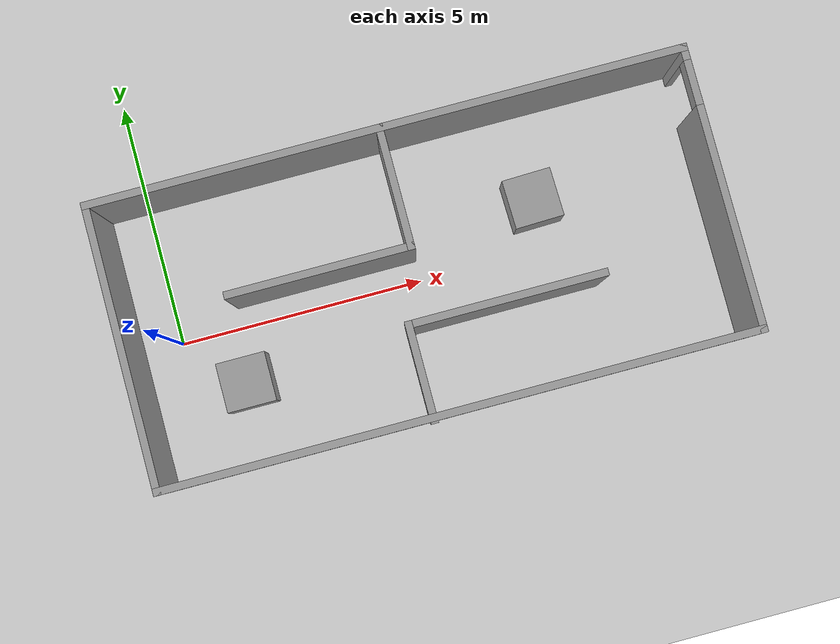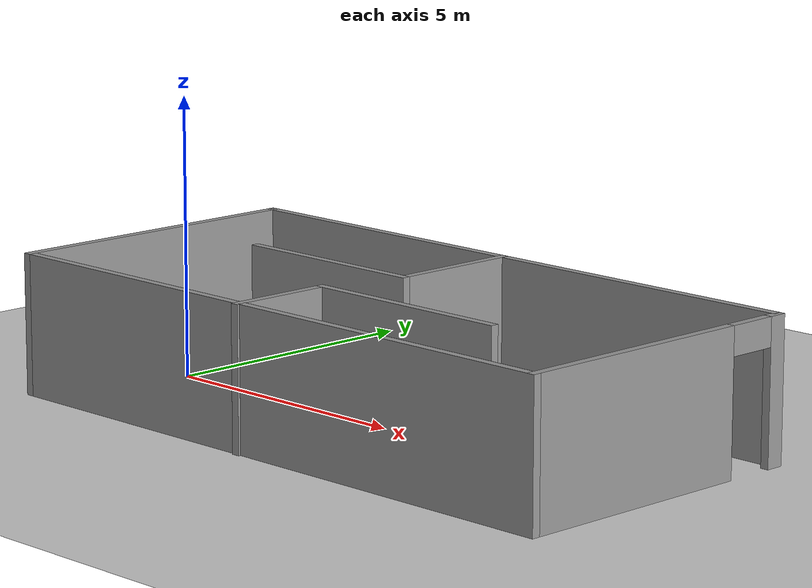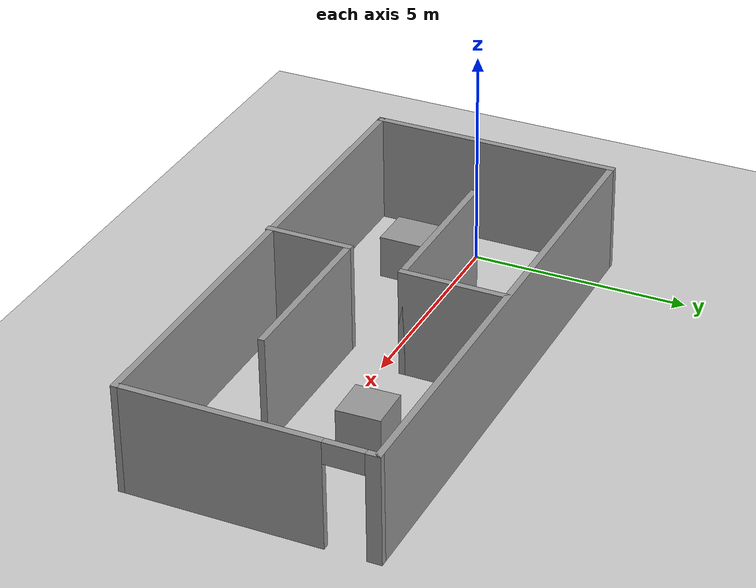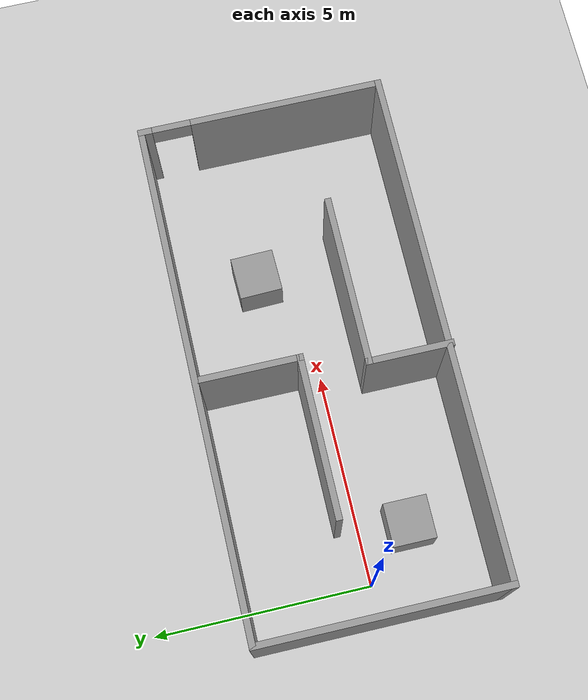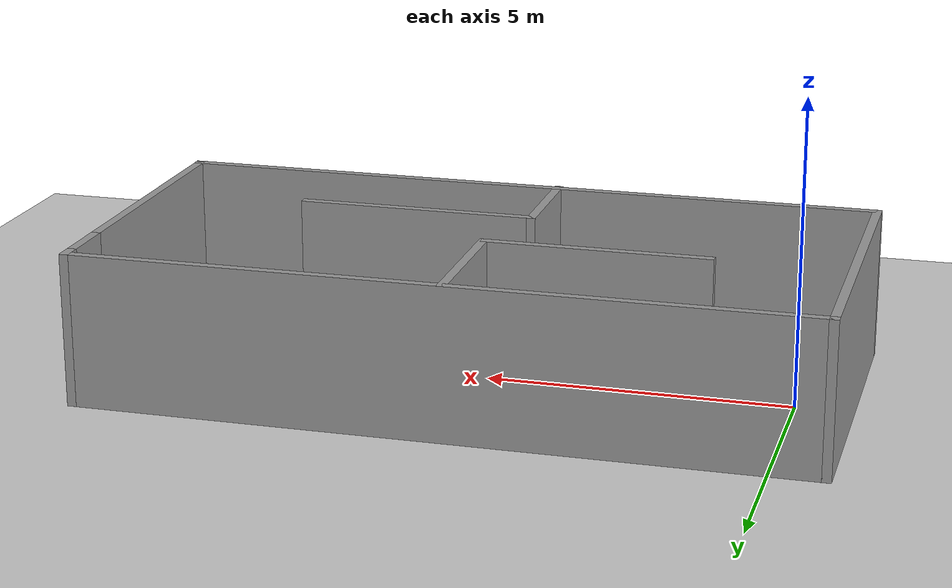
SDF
<sdf version="1.7">
 <world name="default">
  <light name="sun" type="directional">
   <pose>0 0 10 0 -0 0</pose>
   <diffuse>0.8 0.8 0.8 1</diffuse>
   <specular>0.2 0.2 0.2 1</specular>
   <attenuation>
    <range>1000</range>
    <constant>0.9</constant>
    <linear>0.01</linear>
    <quadratic>0.001</quadratic>
   </attenuation>
   <direction>-0.5 0.1 -0.9</direction>
   <spot><inner_angle>0</inner_angle><outer_angle>0</outer_angle><falloff>0</falloff></spot>
  </light>
  <model name="ground_plane">
   <static>1</static>
   <link name="link">
    <collision name="collision">
     <geometry><plane><normal>0 0 1</normal><size>100 100</size></plane></geometry>
     <surface><friction><ode><mu>100</mu><mu2>50</mu2></ode></friction></surface>
    </collision>
    <visual name="visual">
     <cast_shadows>0</cast_shadows>
     <geometry><plane><normal>0 0 1</normal><size>100 100</size></plane></geometry>
     <material>
      <script><uri>file://media/materials/scripts/gazebo.material</uri><name>Gazebo/Grey</name></script>
     </material>
    </visual>
   </link>
  </model>
  <gravity>0 0 -9.8</gravity>
  <magnetic_field>6e-06 2.3e-05 -4.2e-05</magnetic_field>
  <atmosphere type="adiabatic"/>
  <physics type="ode">
   <max_step_size>0.001</max_step_size>
   <real_time_factor>1</real_time_factor>
   <real_time_update_rate>1000</real_time_update_rate>
  </physics>
  <scene><ambient>0.4 0.4 0.4 1</ambient><background>0.7 0.7 0.7 1</background><shadows>1</shadows></scene>
  <spherical_coordinates>
   <surface_model>EARTH_WGS84</surface_model>
   <latitude_deg>0</latitude_deg>
   <longitude_deg>0</longitude_deg>
   <elevation>0</elevation>
   <heading_deg>0</heading_deg>
  </spherical_coordinates>
  <model name="ppp">
   <pose>5.0584 0.023309 0 0 -0 0</pose>
   <link name="Wall_16">
    <collision name="Wall_16_Collision">
     <geometry><box><size>5.75 0.15 2.5</size></box></geometry>
     <pose>0 0 1.25 0 -0 0</pose>
    </collision>
    <visual name="Wall_16_Visual">
     <pose>0 0 1.25 0 -0 0</pose>
     <geometry><box><size>5.75 0.15 2.5</size></box></geometry>
     <material>
      <script><uri>file://media/materials/scripts/gazebo.material</uri><name>Gazebo/Grey</name></script>
      <ambient>1 1 1 1</ambient>
     </material>
     <meta><layer>0</layer></meta>
    </visual>
    <pose>-5.925 0.020423 0 0 -0 1.5708</pose>
   </link>
   <link name="Wall_17">
    <collision name="Wall_17_Collision">
     <geometry><box><size>12 0.15 2.5</size></box></geometry>
     <pose>0 0 1.25 0 -0 0</pose>
    </collision>
    <visual name="Wall_17_Visual">
     <pose>0 0 1.25 0 -0 0</pose>
     <geometry><box><size>12 0.15 2.5</size></box></geometry>
     <material>
      <script><uri>file://media/materials/scripts/gazebo.material</uri><name>Gazebo/Grey</name></script>
      <ambient>1 1 1 1</ambient>
     </material>
     <meta><layer>0</layer></meta>
    </visual>
    <pose>-0 2.82042 0 0 -0 0</pose>
   </link>
   <link name="Wall_18">
    <pose>5.925 0.020423 0 0 -0 -1.5708</pose>
    <visual name="Wall_18_Visual_0">
     <pose>-2.71111 0 1.25 0 -0 0</pose>
     <geometry><box><size>0.327782 0.15 2.5</size></box></geometry>
     <material>
      <script><uri>file://media/materials/scripts/gazebo.material</uri><name>Gazebo/Grey</name></script>
      <ambient>1 1 1 1</ambient>
     </material>
     <meta><layer>0</layer></meta>
    </visual>
    <collision name="Wall_18_Collision_0">
     <geometry><box><size>0.327782 0.15 2.5</size></box></geometry>
     <pose>-2.71111 0 1.25 0 -0 0</pose>
    </collision>
    <visual name="Wall_18_Visual_1">
     <pose>0.613891 0 1.25 0 -0 0</pose>
     <geometry><box><size>4.52222 0.15 2.5</size></box></geometry>
     <material>
      <script><uri>file://media/materials/scripts/gazebo.material</uri><name>Gazebo/Grey</name></script>
      <ambient>1 1 1 1</ambient>
     </material>
     <meta><layer>0</layer></meta>
    </visual>
    <collision name="Wall_18_Collision_1">
     <geometry><box><size>4.52222 0.15 2.5</size></box></geometry>
     <pose>0.613891 0 1.25 0 -0 0</pose>
    </collision>
    <visual name="Wall_18_Visual_2">
     <pose>-2.09722 0 2.25 0 -0 0</pose>
     <geometry><box><size>0.9 0.15 0.5</size></box></geometry>
     <material>
      <script><uri>file://media/materials/scripts/gazebo.material</uri><name>Gazebo/Grey</name></script>
      <ambient>1 1 1 1</ambient>
     </material>
     <meta><layer>0</layer></meta>
    </visual>
    <collision name="Wall_18_Collision_2">
     <geometry><box><size>0.9 0.15 0.5</size></box></geometry>
     <pose>-2.09722 0 2.25 0 -0 0</pose>
    </collision>
   </link>
   <link name="Wall_19">
    <collision name="Wall_19_Collision">
     <geometry><box><size>12 0.15 2.5</size></box></geometry>
     <pose>0 0 1.25 0 -0 0</pose>
    </collision>
    <visual name="Wall_19_Visual">
     <pose>0 0 1.25 0 -0 0</pose>
     <geometry><box><size>12 0.15 2.5</size></box></geometry>
     <material>
      <script><uri>file://media/materials/scripts/gazebo.material</uri><name>Gazebo/Grey</name></script>
      <ambient>1 1 1 1</ambient>
     </material>
     <meta><layer>0</layer></meta>
    </visual>
    <pose>-0 -2.77958 0 0 -0 3.14159</pose>
   </link>
   <link name="Wall_23">
    <collision name="Wall_23_Collision">
     <geometry><box><size>2.5 0.15 2.5</size></box></geometry>
     <pose>0 0 1.25 0 -0 0</pose>
    </collision>
    <visual name="Wall_23_Visual">
     <pose>0 0 1.25 0 -0 0</pose>
     <geometry><box><size>2.5 0.15 2.5</size></box></geometry>
     <material>
      <script><uri>file://media/materials/scripts/gazebo.material</uri><name>Gazebo/Grey</name></script>
      <ambient>1 1 1 1</ambient>
     </material>
     <meta><layer>0</layer></meta>
    </visual>
    <pose>-0.121937 1.64382 0 0 -0 -1.5708</pose>
   </link>
   <link name="Wall_24">
    <collision name="Wall_24_Collision">
     <geometry><box><size>3.75 0.15 2.5</size></box></geometry>
     <pose>0 0 1.25 0 -0 0</pose>
    </collision>
    <visual name="Wall_24_Visual">
     <pose>0 0 1.25 0 -0 0</pose>
     <geometry><box><size>3.75 0.15 2.5</size></box></geometry>
     <material>
      <script><uri>file://media/materials/scripts/gazebo.material</uri><name>Gazebo/Grey</name></script>
      <ambient>1 1 1 1</ambient>
     </material>
     <meta><layer>0</layer></meta>
    </visual>
    <pose>-1.92194 0.468819 0 0 -0 3.14159</pose>
   </link>
   <link name="Wall_26">
    <collision name="Wall_26_Collision">
     <geometry><box><size>2 0.15 2.5</size></box></geometry>
     <pose>0 0 1.25 0 -0 0</pose>
    </collision>
    <visual name="Wall_26_Visual">
     <pose>0 0 1.25 0 -0 0</pose>
     <geometry><box><size>2 0.15 2.5</size></box></geometry>
     <material>
      <script><uri>file://media/materials/scripts/gazebo.material</uri><name>Gazebo/Grey</name></script>
      <ambient>1 1 1 1</ambient>
     </material>
     <meta><layer>0</layer></meta>
    </visual>
    <pose>-0.54754 -1.89542 0 0 -0 1.5708</pose>
   </link>
   <link name="Wall_27">
    <collision name="Wall_27_Collision">
     <geometry><box><size>4 0.15 2.5</size></box></geometry>
     <pose>0 0 1.25 0 -0 0</pose>
    </collision>
    <visual name="Wall_27_Visual">
     <pose>0 0 1.25 0 -0 0</pose>
     <geometry><box><size>4 0.15 2.5</size></box></geometry>
     <material>
      <script><uri>file://media/materials/scripts/gazebo.material</uri><name>Gazebo/Grey</name></script>
      <ambient>1 1 1 1</ambient>
     </material>
     <meta><layer>0</layer></meta>
    </visual>
    <pose>1.37746 -0.970424 0 0 -0 0</pose>
   </link>
   <static>1</static>
  </model>
  <model name="unit_box">
   <pose>7.56718 0.949239 0.499995 1.5708 1e-05 0.027432</pose>
   <link name="link">
    <inertial>
     <mass>1</mass>
     <inertia>
      <ixx>0.166667</ixx>
      <ixy>0</ixy>
      <ixz>0</ixz>
      <iyy>0.166667</iyy>
      <iyz>0</iyz>
      <izz>0.166667</izz>
     </inertia>
    </inertial>
    <collision name="collision"><geometry><box><size>1 1 1</size></box></geometry></collision>
    <visual name="visual">
     <geometry><box><size>1 1 1</size></box></geometry>
     <material>
      <script><name>Gazebo/Grey</name><uri>file://media/materials/scripts/gazebo.material</uri></script>
     </material>
    </visual>
   </link>
  </model>
  <model name="unit_box_0">
   <pose>1.12492 -1.11945 0.499995 -1e-05 -0 -0</pose>
   <link name="link">
    <inertial>
     <mass>1</mass>
     <inertia>
      <ixx>0.166667</ixx>
      <ixy>0</ixy>
      <ixz>0</ixz>
      <iyy>0.166667</iyy>
      <iyz>0</iyz>
      <izz>0.166667</izz>
     </inertia>
    </inertial>
    <collision name="collision"><geometry><box><size>1 1 1</size></box></geometry></collision>
    <visual name="visual">
     <geometry><box><size>1 1 1</size></box></geometry>
     <material>
      <script><name>Gazebo/Grey</name><uri>file://media/materials/scripts/gazebo.material</uri></script>
     </material>
    </visual>
   </link>
  </model>
 </world>
</sdf>
